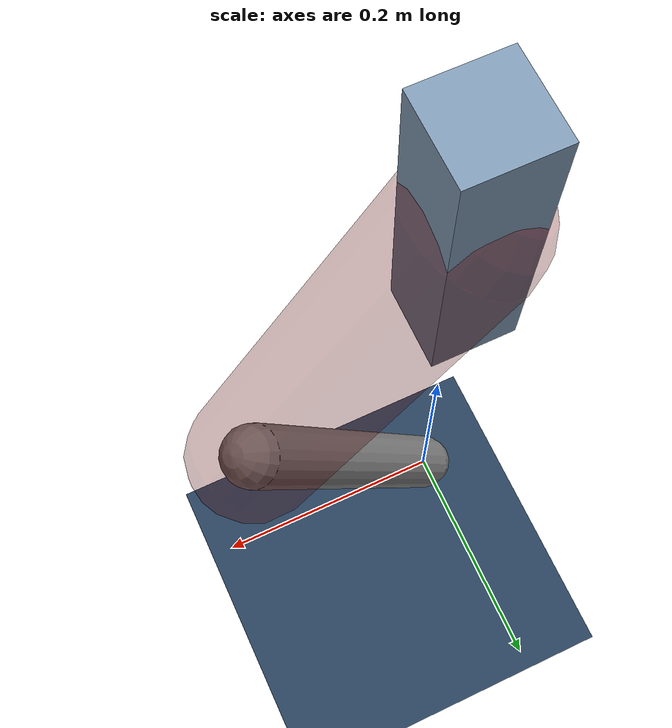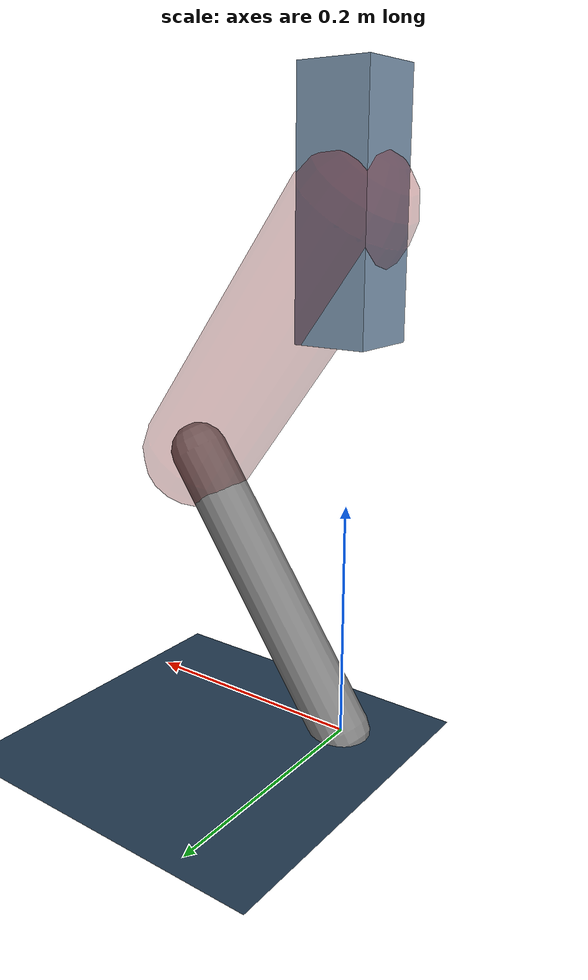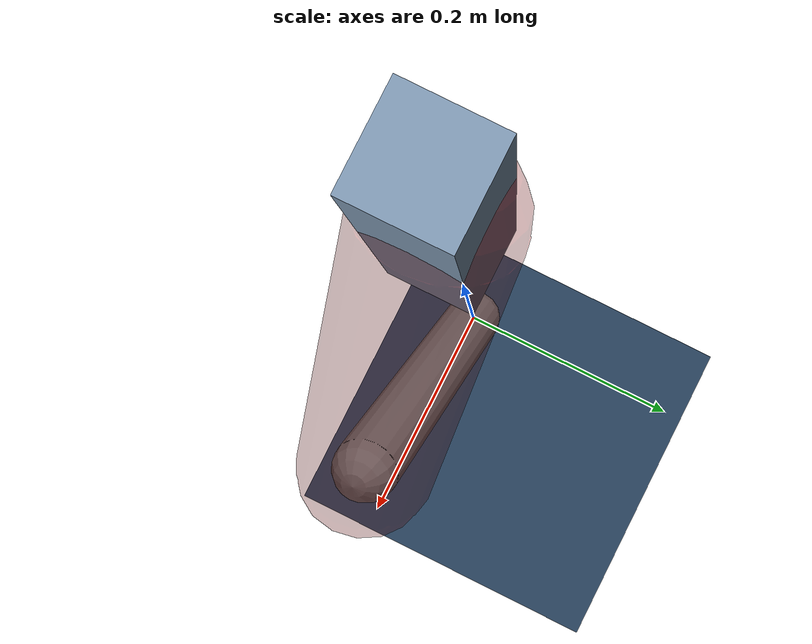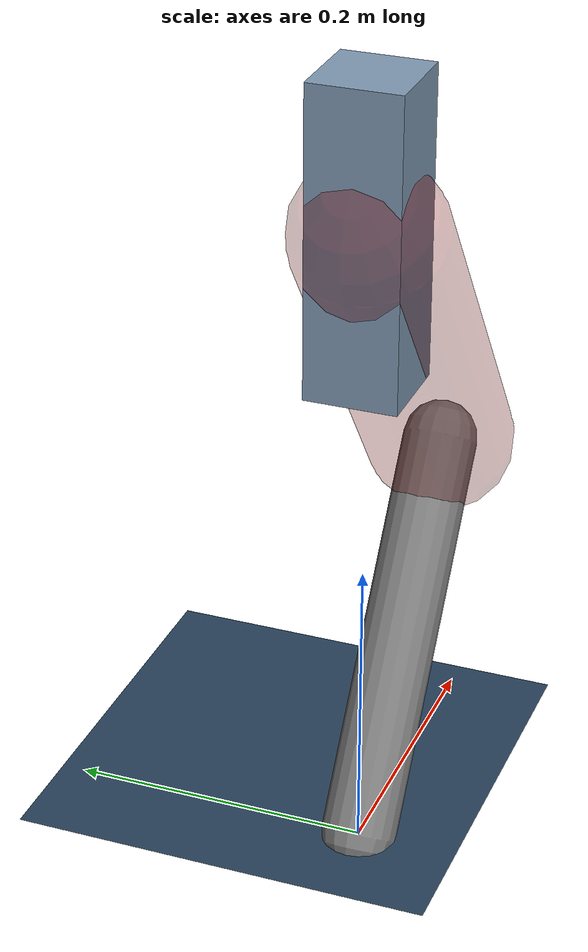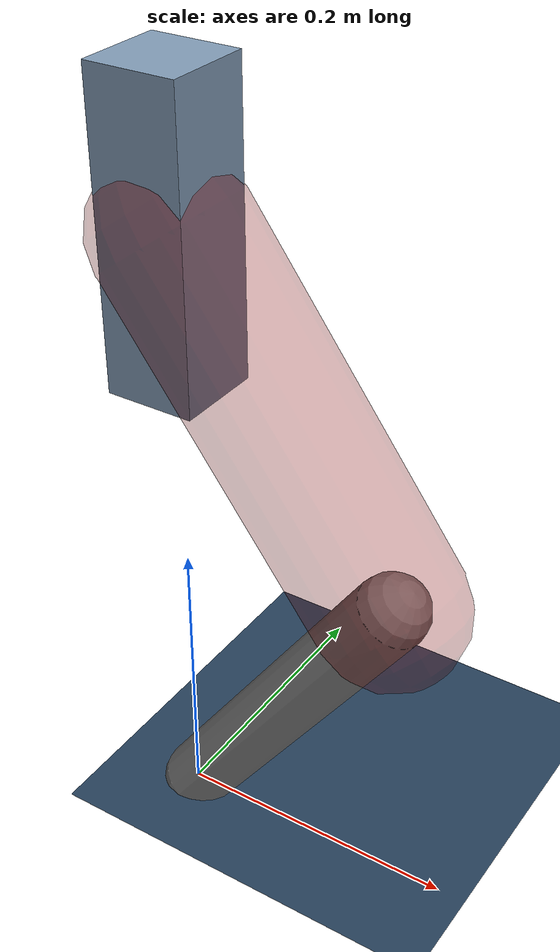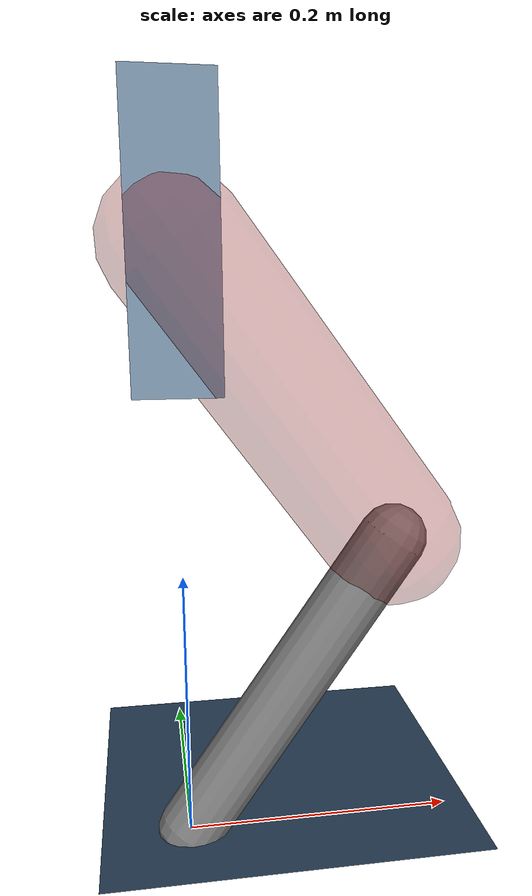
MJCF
<mujoco model="Hopper2D">
	<compiler inertiafromgeom="true" angle="radian" />
	<option timestep="0.001" integrator="implicit" cone="elliptic" solver="Newton" tolerance="1e-10" />

	<default>
		<geom contype="1" conaffinity="1" condim="3" friction="2 0.005 0.0001" solref="0.005 1" />
		<joint limited="true" damping="0.1" />
	</default>

	<asset>
		<texture name="skybox" type="skybox" builtin="gradient" rgb1=".4 .6 .8" rgb2="0 0 0" width="800" height="800" />
		<texture name="grid" type="2d" builtin="checker" rgb1=".1 .2 .3" rgb2=".2 .3 .4" width="300" height="300" mark="edge" markrgb=".2 .3 .4" />
		<material name="ground" texture="grid" texrepeat="1 1" texuniform="true" reflectance="0.1" />
		<material name="leg" rgba="0.5 0.6 0.7 1" />
	</asset>

	<worldbody>

		<geom name="floor" type="plane" size="5 5 0.25" material="ground" />

		<light directional="false" diffuse="0.8 0.8 0.8" specular="0.3 0.3 0.3" pos="0 0 2" dir="0 0 -1" />
		<light mode="targetbodycom" target="base" directional="false" diffuse="0.8 0.8 0.8" specular="0.3 0.3 0.3" pos="0 0 2" dir="0 0 -1" />

		<camera name="fixed" pos="0 -2 1" xyaxes="1 0 0 0 0 1" />
		<camera name="tracking" mode="trackcom" pos="0 -3 1" />

		<body name="root" pos="0 0 0.4314250167426646">
			<joint name="slide_x" type="slide" axis="1 0 0" range="-100 100" />
			<joint name="slide_z" type="slide" axis="0 0 1" range="0 10" />

			<body name="base" pos="0 0 0">
				<geom name="torso" type="box" size="0.03 0.03 0.1" mass="2.186" material="leg" />

				<body name="link1" pos="0 0 0" euler="0 0.9360669907398254 0">
					<joint type="hinge" axis="0 -1 0" pos="0 0 0" name="hinge1" limited="true" range="-3.14 3.14" stiffness="0" damping="0.1" />
					<geom name="thigh" type="capsule" fromto="0 0 0 0.2591958283929191 0 0" size="0.05" rgba="0.5 0 0 0.3" mass="0.8803091538215897" />

					<body name="link2" pos="0.2591958283929191 0 0" euler="0 1.23877693385016 0">
						<joint type="hinge" axis="0 -1 0" pos="0 0 0" name="hinge2" limited="true" range="-3.14 3.14" stiffness="0" damping="0.1" />
						<geom name="shank" type="capsule" fromto="0 0 0 0.2705959136032947 0 0" size="0.025" mass="0.4594363222429652" />

					</body>
				</body>
			</body>
		</body>
	</worldbody>

	<actuator>
		<motor name="torque1" joint="hinge1" ctrlrange="-31.364148091892247 31.364148091892247" ctrllimited="true" gear="1" />
		<motor name="torque2" joint="hinge2" ctrlrange="-79.80985503952633 79.80985503952633" ctrllimited="true" gear="1" />
	</actuator>
</mujoco>
